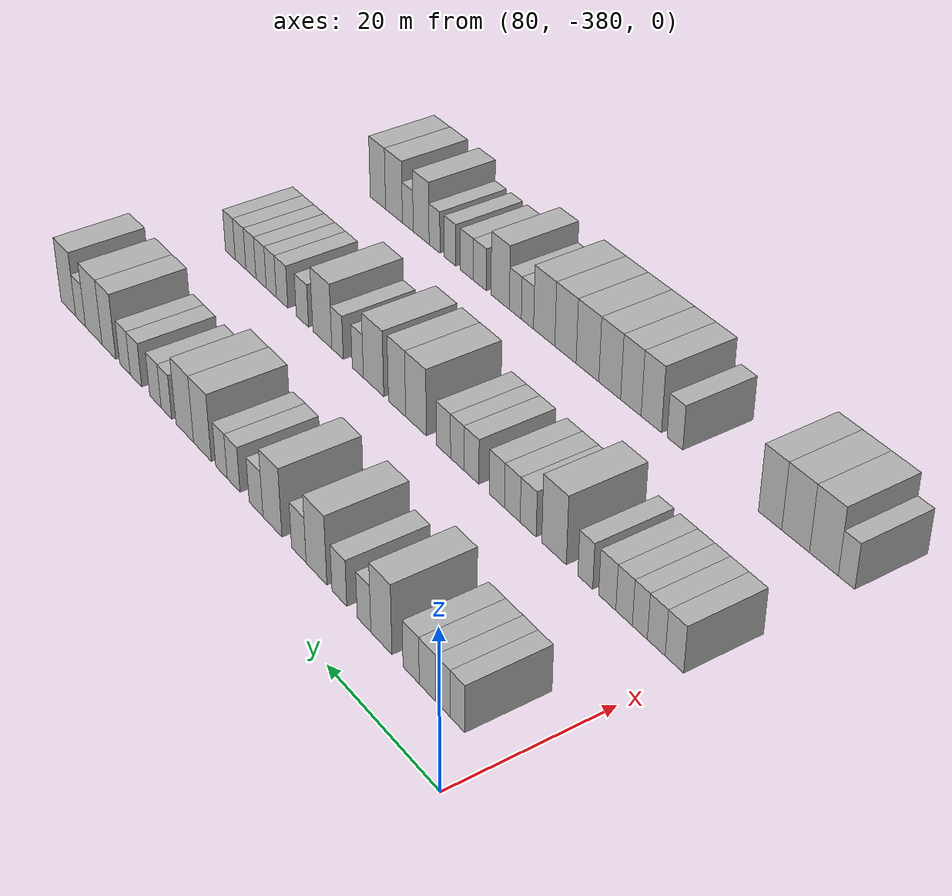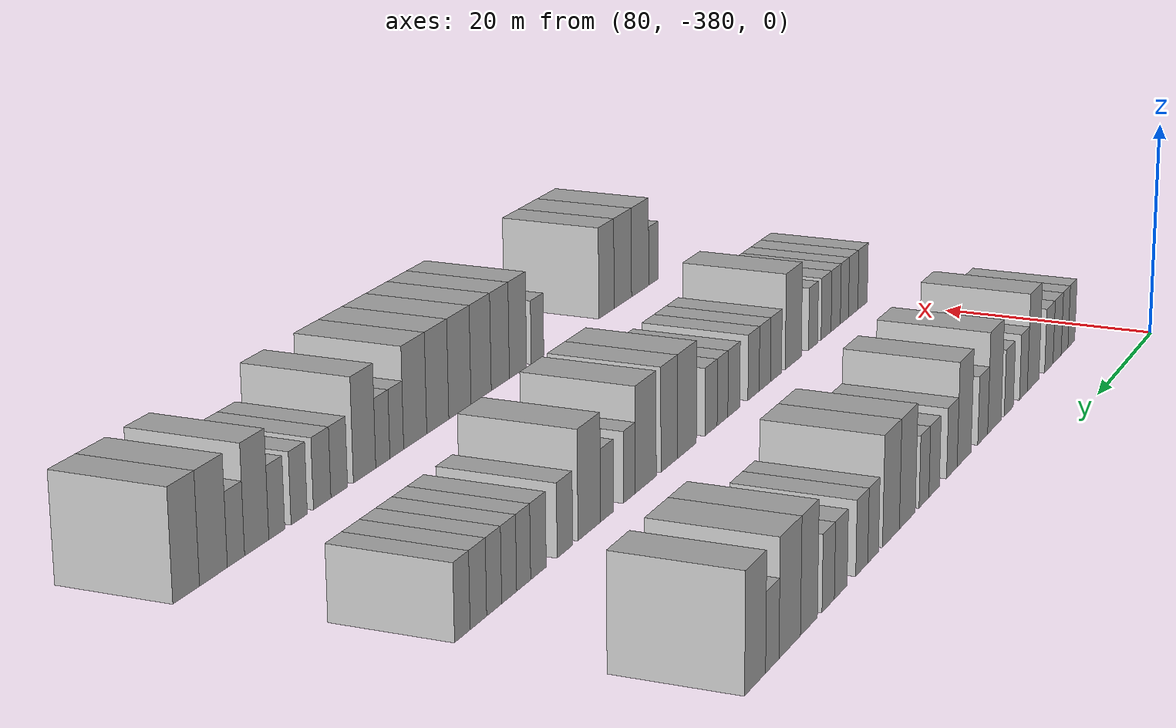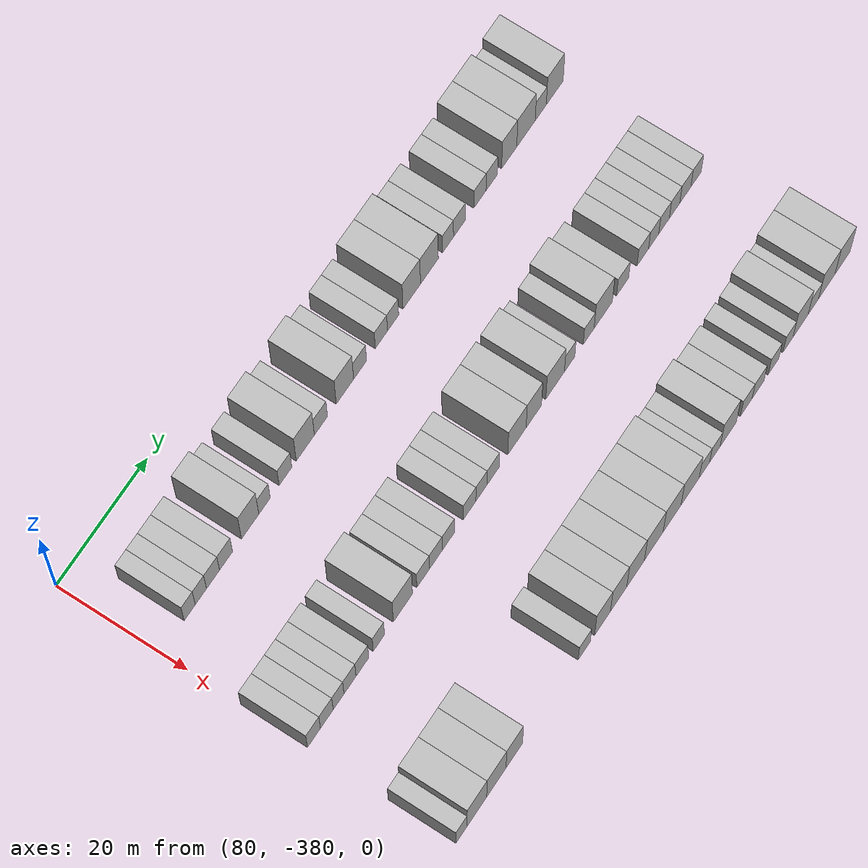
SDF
<sdf version="1.6">
 <world name="default">
  <model name="building_555">
   <static>1</static>
   <pose>91.0000 -373.7468 0 0.000000 0.000000 0.000000</pose>
   <link name="link">
    <pose>0 0 3.00 0 0 0</pose>
    <collision name="collision"><geometry><box><size>10.0000 2.4675 6.0000</size></box></geometry></collision>
    <visual name="visual">
     <cast_shadows>0</cast_shadows>
     <geometry><box><size>10.0000 2.4675 6.0000</size></box></geometry>
     <material>
      <script>
       <uri>model://HANNAS_wall/materials/scripts</uri>
       <uri>model://HANNAS_wall/materials/textures</uri>
       <name>vrc/HANNAS_wall</name>
      </script>
     </material>
    </visual>
   </link>
  </model>
  <model name="building_556">
   <static>1</static>
   <pose>91.0000 -371.2702 0 0.000000 0.000000 0.000000</pose>
   <link name="link">
    <pose>0 0 3.00 0 0 0</pose>
    <collision name="collision"><geometry><box><size>10.0000 2.4859 6.0000</size></box></geometry></collision>
    <visual name="visual">
     <cast_shadows>0</cast_shadows>
     <geometry><box><size>10.0000 2.4859 6.0000</size></box></geometry>
     <material>
      <script>
       <uri>model://HANNAS_wall/materials/scripts</uri>
       <uri>model://HANNAS_wall/materials/textures</uri>
       <name>vrc/HANNAS_wall</name>
      </script>
     </material>
    </visual>
   </link>
  </model>
  <model name="building_557">
   <static>1</static>
   <pose>91.0000 -368.5796 0 0.000000 0.000000 0.000000</pose>
   <link name="link">
    <pose>0 0 3.00 0 0 0</pose>
    <collision name="collision"><geometry><box><size>10.0000 2.8952 6.0000</size></box></geometry></collision>
    <visual name="visual">
     <cast_shadows>0</cast_shadows>
     <geometry><box><size>10.0000 2.8952 6.0000</size></box></geometry>
     <material>
      <script>
       <uri>model://HANNAS_wall/materials/scripts</uri>
       <uri>model://HANNAS_wall/materials/textures</uri>
       <name>vrc/HANNAS_wall</name>
      </script>
     </material>
    </visual>
   </link>
  </model>
  <model name="building_558">
   <static>1</static>
   <pose>91.0000 -365.6841 0 0.000000 0.000000 0.000000</pose>
   <link name="link">
    <pose>0 0 3.00 0 0 0</pose>
    <collision name="collision"><geometry><box><size>10.0000 2.8960 6.0000</size></box></geometry></collision>
    <visual name="visual">
     <cast_shadows>0</cast_shadows>
     <geometry><box><size>10.0000 2.8960 6.0000</size></box></geometry>
     <material>
      <script>
       <uri>model://HANNAS_wall/materials/scripts</uri>
       <uri>model://HANNAS_wall/materials/textures</uri>
       <name>vrc/HANNAS_wall</name>
      </script>
     </material>
    </visual>
   </link>
  </model>
  <model name="building_559">
   <static>1</static>
   <pose>91.0000 -360.2911 0 0.000000 0.000000 0.000000</pose>
   <link name="link">
    <pose>0 0 4.50 0 0 0</pose>
    <collision name="collision"><geometry><box><size>10.0000 3.8900 9.0000</size></box></geometry></collision>
    <visual name="visual">
     <cast_shadows>0</cast_shadows>
     <geometry><box><size>10.0000 3.8900 9.0000</size></box></geometry>
     <material>
      <script>
       <uri>model://HANNAS_wall/materials/scripts</uri>
       <uri>model://HANNAS_wall/materials/textures</uri>
       <name>vrc/HANNAS_wall</name>
      </script>
     </material>
    </visual>
   </link>
  </model>
  <model name="building_560">
   <static>1</static>
   <pose>91.0000 -357.0612 0 0.000000 0.000000 0.000000</pose>
   <link name="link">
    <pose>0 0 3.00 0 0 0</pose>
    <collision name="collision"><geometry><box><size>10.0000 2.5698 6.0000</size></box></geometry></collision>
    <visual name="visual">
     <cast_shadows>0</cast_shadows>
     <geometry><box><size>10.0000 2.5698 6.0000</size></box></geometry>
     <material>
      <script>
       <uri>model://HANNAS_wall/materials/scripts</uri>
       <uri>model://HANNAS_wall/materials/textures</uri>
       <name>vrc/HANNAS_wall</name>
      </script>
     </material>
    </visual>
   </link>
  </model>
  <model name="building_561">
   <static>1</static>
   <pose>91.0000 -352.3378 0 0.000000 0.000000 0.000000</pose>
   <link name="link">
    <pose>0 0 3.00 0 0 0</pose>
    <collision name="collision"><geometry><box><size>10.0000 2.8769 6.0000</size></box></geometry></collision>
    <visual name="visual">
     <cast_shadows>0</cast_shadows>
     <geometry><box><size>10.0000 2.8769 6.0000</size></box></geometry>
     <material>
      <script>
       <uri>model://HANNAS_wall/materials/scripts</uri>
       <uri>model://HANNAS_wall/materials/textures</uri>
       <name>vrc/HANNAS_wall</name>
      </script>
     </material>
    </visual>
   </link>
  </model>
  <model name="building_562">
   <static>1</static>
   <pose>91.0000 -347.8340 0 0.000000 0.000000 0.000000</pose>
   <link name="link">
    <pose>0 0 4.50 0 0 0</pose>
    <collision name="collision"><geometry><box><size>10.0000 4.1307 9.0000</size></box></geometry></collision>
    <visual name="visual">
     <cast_shadows>0</cast_shadows>
     <geometry><box><size>10.0000 4.1307 9.0000</size></box></geometry>
     <material>
      <script>
       <uri>model://HANNAS_wall/materials/scripts</uri>
       <uri>model://HANNAS_wall/materials/textures</uri>
       <name>vrc/HANNAS_wall</name>
      </script>
     </material>
    </visual>
   </link>
  </model>
  <model name="building_563">
   <static>1</static>
   <pose>91.0000 -344.2772 0 0.000000 0.000000 0.000000</pose>
   <link name="link">
    <pose>0 0 3.00 0 0 0</pose>
    <collision name="collision"><geometry><box><size>10.0000 2.9828 6.0000</size></box></geometry></collision>
    <visual name="visual">
     <cast_shadows>0</cast_shadows>
     <geometry><box><size>10.0000 2.9828 6.0000</size></box></geometry>
     <material>
      <script>
       <uri>model://HANNAS_wall/materials/scripts</uri>
       <uri>model://HANNAS_wall/materials/textures</uri>
       <name>vrc/HANNAS_wall</name>
      </script>
     </material>
    </visual>
   </link>
  </model>
  <model name="building_564">
   <static>1</static>
   <pose>91.0000 -338.7877 0 0.000000 0.000000 0.000000</pose>
   <link name="link">
    <pose>0 0 4.50 0 0 0</pose>
    <collision name="collision"><geometry><box><size>10.0000 3.9963 9.0000</size></box></geometry></collision>
    <visual name="visual">
     <cast_shadows>0</cast_shadows>
     <geometry><box><size>10.0000 3.9963 9.0000</size></box></geometry>
     <material>
      <script>
       <uri>model://HANNAS_wall/materials/scripts</uri>
       <uri>model://HANNAS_wall/materials/textures</uri>
       <name>vrc/HANNAS_wall</name>
      </script>
     </material>
    </visual>
   </link>
  </model>
  <model name="building_565">
   <static>1</static>
   <pose>91.0000 -335.2972 0 0.000000 0.000000 0.000000</pose>
   <link name="link">
    <pose>0 0 3.00 0 0 0</pose>
    <collision name="collision"><geometry><box><size>10.0000 2.9849 6.0000</size></box></geometry></collision>
    <visual name="visual">
     <cast_shadows>0</cast_shadows>
     <geometry><box><size>10.0000 2.9849 6.0000</size></box></geometry>
     <material>
      <script>
       <uri>model://HANNAS_wall/materials/scripts</uri>
       <uri>model://HANNAS_wall/materials/textures</uri>
       <name>vrc/HANNAS_wall</name>
      </script>
     </material>
    </visual>
   </link>
  </model>
  <model name="building_566">
   <static>1</static>
   <pose>91.0000 -330.3854 0 0.000000 0.000000 0.000000</pose>
   <link name="link">
    <pose>0 0 3.00 0 0 0</pose>
    <collision name="collision"><geometry><box><size>10.0000 2.8386 6.0000</size></box></geometry></collision>
    <visual name="visual">
     <cast_shadows>0</cast_shadows>
     <geometry><box><size>10.0000 2.8386 6.0000</size></box></geometry>
     <material>
      <script>
       <uri>model://HANNAS_wall/materials/scripts</uri>
       <uri>model://HANNAS_wall/materials/textures</uri>
       <name>vrc/HANNAS_wall</name>
      </script>
     </material>
    </visual>
   </link>
  </model>
  <model name="building_567">
   <static>1</static>
   <pose>91.0000 -327.6659 0 0.000000 0.000000 0.000000</pose>
   <link name="link">
    <pose>0 0 3.00 0 0 0</pose>
    <collision name="collision"><geometry><box><size>10.0000 2.6005 6.0000</size></box></geometry></collision>
    <visual name="visual">
     <cast_shadows>0</cast_shadows>
     <geometry><box><size>10.0000 2.6005 6.0000</size></box></geometry>
     <material>
      <script>
       <uri>model://HANNAS_wall/materials/scripts</uri>
       <uri>model://HANNAS_wall/materials/textures</uri>
       <name>vrc/HANNAS_wall</name>
      </script>
     </material>
    </visual>
   </link>
  </model>
  <model name="building_568">
   <static>1</static>
   <pose>91.0000 -323.3179 0 0.000000 0.000000 0.000000</pose>
   <link name="link">
    <pose>0 0 4.50 0 0 0</pose>
    <collision name="collision"><geometry><box><size>10.0000 4.0955 9.0000</size></box></geometry></collision>
    <visual name="visual">
     <cast_shadows>0</cast_shadows>
     <geometry><box><size>10.0000 4.0955 9.0000</size></box></geometry>
     <material>
      <script>
       <uri>model://HANNAS_wall/materials/scripts</uri>
       <uri>model://HANNAS_wall/materials/textures</uri>
       <name>vrc/HANNAS_wall</name>
      </script>
     </material>
    </visual>
   </link>
  </model>
  <model name="building_569">
   <static>1</static>
   <pose>91.0000 -319.1770 0 0.000000 0.000000 0.000000</pose>
   <link name="link">
    <pose>0 0 4.50 0 0 0</pose>
    <collision name="collision"><geometry><box><size>10.0000 4.1863 9.0000</size></box></geometry></collision>
    <visual name="visual">
     <cast_shadows>0</cast_shadows>
     <geometry><box><size>10.0000 4.1863 9.0000</size></box></geometry>
     <material>
      <script>
       <uri>model://HANNAS_wall/materials/scripts</uri>
       <uri>model://HANNAS_wall/materials/textures</uri>
       <name>vrc/HANNAS_wall</name>
      </script>
     </material>
    </visual>
   </link>
  </model>
  <model name="building_570">
   <static>1</static>
   <pose>91.0000 -314.7963 0 0.000000 0.000000 0.000000</pose>
   <link name="link">
    <pose>0 0 3.00 0 0 0</pose>
    <collision name="collision"><geometry><box><size>10.0000 2.5751 6.0000</size></box></geometry></collision>
    <visual name="visual">
     <cast_shadows>0</cast_shadows>
     <geometry><box><size>10.0000 2.5751 6.0000</size></box></geometry>
     <material>
      <script>
       <uri>model://HANNAS_wall/materials/scripts</uri>
       <uri>model://HANNAS_wall/materials/textures</uri>
       <name>vrc/HANNAS_wall</name>
      </script>
     </material>
    </visual>
   </link>
  </model>
  <model name="building_571">
   <static>1</static>
   <pose>91.0000 -312.0981 0 0.000000 0.000000 0.000000</pose>
   <link name="link">
    <pose>0 0 3.00 0 0 0</pose>
    <collision name="collision"><geometry><box><size>10.0000 2.8213 6.0000</size></box></geometry></collision>
    <visual name="visual">
     <cast_shadows>0</cast_shadows>
     <geometry><box><size>10.0000 2.8213 6.0000</size></box></geometry>
     <material>
      <script>
       <uri>model://HANNAS_wall/materials/scripts</uri>
       <uri>model://HANNAS_wall/materials/textures</uri>
       <name>vrc/HANNAS_wall</name>
      </script>
     </material>
    </visual>
   </link>
  </model>
  <model name="building_572">
   <static>1</static>
   <pose>91.0000 -307.2477 0 0.000000 0.000000 0.000000</pose>
   <link name="link">
    <pose>0 0 3.00 0 0 0</pose>
    <collision name="collision"><geometry><box><size>10.0000 2.8794 6.0000</size></box></geometry></collision>
    <visual name="visual">
     <cast_shadows>0</cast_shadows>
     <geometry><box><size>10.0000 2.8794 6.0000</size></box></geometry>
     <material>
      <script>
       <uri>model://HANNAS_wall/materials/scripts</uri>
       <uri>model://HANNAS_wall/materials/textures</uri>
       <name>vrc/HANNAS_wall</name>
      </script>
     </material>
    </visual>
   </link>
  </model>
  <model name="building_573">
   <static>1</static>
   <pose>91.0000 -304.4415 0 0.000000 0.000000 0.000000</pose>
   <link name="link">
    <pose>0 0 3.00 0 0 0</pose>
    <collision name="collision"><geometry><box><size>10.0000 2.7329 6.0000</size></box></geometry></collision>
    <visual name="visual">
     <cast_shadows>0</cast_shadows>
     <geometry><box><size>10.0000 2.7329 6.0000</size></box></geometry>
     <material>
      <script>
       <uri>model://HANNAS_wall/materials/scripts</uri>
       <uri>model://HANNAS_wall/materials/textures</uri>
       <name>vrc/HANNAS_wall</name>
      </script>
     </material>
    </visual>
   </link>
  </model>
  <model name="building_574">
   <static>1</static>
   <pose>91.0000 -300.2672 0 0.000000 0.000000 0.000000</pose>
   <link name="link">
    <pose>0 0 4.50 0 0 0</pose>
    <collision name="collision"><geometry><box><size>10.0000 3.6159 9.0000</size></box></geometry></collision>
    <visual name="visual">
     <cast_shadows>0</cast_shadows>
     <geometry><box><size>10.0000 3.6159 9.0000</size></box></geometry>
     <material>
      <script>
       <uri>model://HANNAS_wall/materials/scripts</uri>
       <uri>model://HANNAS_wall/materials/textures</uri>
       <name>vrc/HANNAS_wall</name>
      </script>
     </material>
    </visual>
   </link>
  </model>
  <model name="building_575">
   <static>1</static>
   <pose>91.0000 -296.2423 0 0.000000 0.000000 0.000000</pose>
   <link name="link">
    <pose>0 0 4.50 0 0 0</pose>
    <collision name="collision"><geometry><box><size>10.0000 4.4338 9.0000</size></box></geometry></collision>
    <visual name="visual">
     <cast_shadows>0</cast_shadows>
     <geometry><box><size>10.0000 4.4338 9.0000</size></box></geometry>
     <material>
      <script>
       <uri>model://HANNAS_wall/materials/scripts</uri>
       <uri>model://HANNAS_wall/materials/textures</uri>
       <name>vrc/HANNAS_wall</name>
      </script>
     </material>
    </visual>
   </link>
  </model>
  <model name="building_576">
   <static>1</static>
   <pose>91.0000 -292.6912 0 0.000000 0.000000 0.000000</pose>
   <link name="link">
    <pose>0 0 3.00 0 0 0</pose>
    <collision name="collision"><geometry><box><size>10.0000 2.6684 6.0000</size></box></geometry></collision>
    <visual name="visual">
     <cast_shadows>0</cast_shadows>
     <geometry><box><size>10.0000 2.6684 6.0000</size></box></geometry>
     <material>
      <script>
       <uri>model://HANNAS_wall/materials/scripts</uri>
       <uri>model://HANNAS_wall/materials/textures</uri>
       <name>vrc/HANNAS_wall</name>
      </script>
     </material>
    </visual>
   </link>
  </model>
  <model name="building_577">
   <static>1</static>
   <pose>91.0000 -289.3203 0 0.000000 0.000000 0.000000</pose>
   <link name="link">
    <pose>0 0 4.50 0 0 0</pose>
    <collision name="collision"><geometry><box><size>10.0000 4.0735 9.0000</size></box></geometry></collision>
    <visual name="visual">
     <cast_shadows>0</cast_shadows>
     <geometry><box><size>10.0000 4.0735 9.0000</size></box></geometry>
     <material>
      <script>
       <uri>model://HANNAS_wall/materials/scripts</uri>
       <uri>model://HANNAS_wall/materials/textures</uri>
       <name>vrc/HANNAS_wall</name>
      </script>
     </material>
    </visual>
   </link>
  </model>
  <model name="building_754">
   <static>1</static>
   <pose>113.0000 -378.5591 0 0.000000 0.000000 0.000000</pose>
   <link name="link">
    <pose>0 0 3.00 0 0 0</pose>
    <collision name="collision"><geometry><box><size>10.0000 2.8818 6.0000</size></box></geometry></collision>
    <visual name="visual">
     <cast_shadows>0</cast_shadows>
     <geometry><box><size>10.0000 2.8818 6.0000</size></box></geometry>
     <material>
      <script>
       <uri>model://HANNAS_wall/materials/scripts</uri>
       <uri>model://HANNAS_wall/materials/textures</uri>
       <name>vrc/HANNAS_wall</name>
      </script>
     </material>
    </visual>
   </link>
  </model>
  <model name="building_755">
   <static>1</static>
   <pose>113.0000 -375.7005 0 0.000000 0.000000 0.000000</pose>
   <link name="link">
    <pose>0 0 3.00 0 0 0</pose>
    <collision name="collision"><geometry><box><size>10.0000 2.8353 6.0000</size></box></geometry></collision>
    <visual name="visual">
     <cast_shadows>0</cast_shadows>
     <geometry><box><size>10.0000 2.8353 6.0000</size></box></geometry>
     <material>
      <script>
       <uri>model://HANNAS_wall/materials/scripts</uri>
       <uri>model://HANNAS_wall/materials/textures</uri>
       <name>vrc/HANNAS_wall</name>
      </script>
     </material>
    </visual>
   </link>
  </model>
  <model name="building_756">
   <static>1</static>
   <pose>113.0000 -373.0768 0 0.000000 0.000000 0.000000</pose>
   <link name="link">
    <pose>0 0 3.00 0 0 0</pose>
    <collision name="collision"><geometry><box><size>10.0000 2.4121 6.0000</size></box></geometry></collision>
    <visual name="visual">
     <cast_shadows>0</cast_shadows>
     <geometry><box><size>10.0000 2.4121 6.0000</size></box></geometry>
     <material>
      <script>
       <uri>model://HANNAS_wall/materials/scripts</uri>
       <uri>model://HANNAS_wall/materials/textures</uri>
       <name>vrc/HANNAS_wall</name>
      </script>
     </material>
    </visual>
   </link>
  </model>
  <model name="building_757">
   <static>1</static>
   <pose>113.0000 -370.5187 0 0.000000 0.000000 0.000000</pose>
   <link name="link">
    <pose>0 0 3.00 0 0 0</pose>
    <collision name="collision"><geometry><box><size>10.0000 2.7042 6.0000</size></box></geometry></collision>
    <visual name="visual">
     <cast_shadows>0</cast_shadows>
     <geometry><box><size>10.0000 2.7042 6.0000</size></box></geometry>
     <material>
      <script>
       <uri>model://HANNAS_wall/materials/scripts</uri>
       <uri>model://HANNAS_wall/materials/textures</uri>
       <name>vrc/HANNAS_wall</name>
      </script>
     </material>
    </visual>
   </link>
  </model>
  <model name="building_758">
   <static>1</static>
   <pose>113.0000 -367.7369 0 0.000000 0.000000 0.000000</pose>
   <link name="link">
    <pose>0 0 3.00 0 0 0</pose>
    <collision name="collision"><geometry><box><size>10.0000 2.8594 6.0000</size></box></geometry></collision>
    <visual name="visual">
     <cast_shadows>0</cast_shadows>
     <geometry><box><size>10.0000 2.8594 6.0000</size></box></geometry>
     <material>
      <script>
       <uri>model://HANNAS_wall/materials/scripts</uri>
       <uri>model://HANNAS_wall/materials/textures</uri>
       <name>vrc/HANNAS_wall</name>
      </script>
     </material>
    </visual>
   </link>
  </model>
  <model name="building_759">
   <static>1</static>
   <pose>113.0000 -364.0393 0 0.000000 0.000000 0.000000</pose>
   <link name="link">
    <pose>0 0 3.00 0 0 0</pose>
    <collision name="collision"><geometry><box><size>10.0000 2.5359 6.0000</size></box></geometry></collision>
    <visual name="visual">
     <cast_shadows>0</cast_shadows>
     <geometry><box><size>10.0000 2.5359 6.0000</size></box></geometry>
     <material>
      <script>
       <uri>model://HANNAS_wall/materials/scripts</uri>
       <uri>model://HANNAS_wall/materials/textures</uri>
       <name>vrc/HANNAS_wall</name>
      </script>
     </material>
    </visual>
   </link>
  </model>
  <model name="building_760">
   <static>1</static>
   <pose>113.0000 -358.6013 0 0.000000 0.000000 0.000000</pose>
   <link name="link">
    <pose>0 0 4.50 0 0 0</pose>
    <collision name="collision"><geometry><box><size>10.0000 4.3400 9.0000</size></box></geometry></collision>
    <visual name="visual">
     <cast_shadows>0</cast_shadows>
     <geometry><box><size>10.0000 4.3400 9.0000</size></box></geometry>
     <material>
      <script>
       <uri>model://HANNAS_wall/materials/scripts</uri>
       <uri>model://HANNAS_wall/materials/textures</uri>
       <name>vrc/HANNAS_wall</name>
      </script>
     </material>
    </visual>
   </link>
  </model>
  <model name="building_761">
   <static>1</static>
   <pose>113.0000 -353.9856 0 0.000000 0.000000 0.000000</pose>
   <link name="link">
    <pose>0 0 3.00 0 0 0</pose>
    <collision name="collision"><geometry><box><size>10.0000 2.8913 6.0000</size></box></geometry></collision>
    <visual name="visual">
     <cast_shadows>0</cast_shadows>
     <geometry><box><size>10.0000 2.8913 6.0000</size></box></geometry>
     <material>
      <script>
       <uri>model://HANNAS_wall/materials/scripts</uri>
       <uri>model://HANNAS_wall/materials/textures</uri>
       <name>vrc/HANNAS_wall</name>
      </script>
     </material>
    </visual>
   </link>
  </model>
  <model name="building_762">
   <static>1</static>
   <pose>113.0000 -351.0935 0 0.000000 0.000000 0.000000</pose>
   <link name="link">
    <pose>0 0 3.00 0 0 0</pose>
    <collision name="collision"><geometry><box><size>10.0000 2.8929 6.0000</size></box></geometry></collision>
    <visual name="visual">
     <cast_shadows>0</cast_shadows>
     <geometry><box><size>10.0000 2.8929 6.0000</size></box></geometry>
     <material>
      <script>
       <uri>model://HANNAS_wall/materials/scripts</uri>
       <uri>model://HANNAS_wall/materials/textures</uri>
       <name>vrc/HANNAS_wall</name>
      </script>
     </material>
    </visual>
   </link>
  </model>
  <model name="building_763">
   <static>1</static>
   <pose>113.0000 -348.2249 0 0.000000 0.000000 0.000000</pose>
   <link name="link">
    <pose>0 0 3.00 0 0 0</pose>
    <collision name="collision"><geometry><box><size>10.0000 2.8443 6.0000</size></box></geometry></collision>
    <visual name="visual">
     <cast_shadows>0</cast_shadows>
     <geometry><box><size>10.0000 2.8443 6.0000</size></box></geometry>
     <material>
      <script>
       <uri>model://HANNAS_wall/materials/scripts</uri>
       <uri>model://HANNAS_wall/materials/textures</uri>
       <name>vrc/HANNAS_wall</name>
      </script>
     </material>
    </visual>
   </link>
  </model>
  <model name="building_764">
   <static>1</static>
   <pose>113.0000 -343.3416 0 0.000000 0.000000 0.000000</pose>
   <link name="link">
    <pose>0 0 3.00 0 0 0</pose>
    <collision name="collision"><geometry><box><size>10.0000 2.9224 6.0000</size></box></geometry></collision>
    <visual name="visual">
     <cast_shadows>0</cast_shadows>
     <geometry><box><size>10.0000 2.9224 6.0000</size></box></geometry>
     <material>
      <script>
       <uri>model://HANNAS_wall/materials/scripts</uri>
       <uri>model://HANNAS_wall/materials/textures</uri>
       <name>vrc/HANNAS_wall</name>
      </script>
     </material>
    </visual>
   </link>
  </model>
  <model name="building_765">
   <static>1</static>
   <pose>113.0000 -340.5971 0 0.000000 0.000000 0.000000</pose>
   <link name="link">
    <pose>0 0 3.00 0 0 0</pose>
    <collision name="collision"><geometry><box><size>10.0000 2.5666 6.0000</size></box></geometry></collision>
    <visual name="visual">
     <cast_shadows>0</cast_shadows>
     <geometry><box><size>10.0000 2.5666 6.0000</size></box></geometry>
     <material>
      <script>
       <uri>model://HANNAS_wall/materials/scripts</uri>
       <uri>model://HANNAS_wall/materials/textures</uri>
       <name>vrc/HANNAS_wall</name>
      </script>
     </material>
    </visual>
   </link>
  </model>
  <model name="building_766">
   <static>1</static>
   <pose>113.0000 -337.8882 0 0.000000 0.000000 0.000000</pose>
   <link name="link">
    <pose>0 0 3.00 0 0 0</pose>
    <collision name="collision"><geometry><box><size>10.0000 2.8511 6.0000</size></box></geometry></collision>
    <visual name="visual">
     <cast_shadows>0</cast_shadows>
     <geometry><box><size>10.0000 2.8511 6.0000</size></box></geometry>
     <material>
      <script>
       <uri>model://HANNAS_wall/materials/scripts</uri>
       <uri>model://HANNAS_wall/materials/textures</uri>
       <name>vrc/HANNAS_wall</name>
      </script>
     </material>
    </visual>
   </link>
  </model>
  <model name="building_767">
   <static>1</static>
   <pose>113.0000 -332.3294 0 0.000000 0.000000 0.000000</pose>
   <link name="link">
    <pose>0 0 4.50 0 0 0</pose>
    <collision name="collision"><geometry><box><size>10.0000 4.2665 9.0000</size></box></geometry></collision>
    <visual name="visual">
     <cast_shadows>0</cast_shadows>
     <geometry><box><size>10.0000 4.2665 9.0000</size></box></geometry>
     <material>
      <script>
       <uri>model://HANNAS_wall/materials/scripts</uri>
       <uri>model://HANNAS_wall/materials/textures</uri>
       <name>vrc/HANNAS_wall</name>
      </script>
     </material>
    </visual>
   </link>
  </model>
  <model name="building_768">
   <static>1</static>
   <pose>113.0000 -328.3878 0 0.000000 0.000000 0.000000</pose>
   <link name="link">
    <pose>0 0 4.50 0 0 0</pose>
    <collision name="collision"><geometry><box><size>10.0000 3.6167 9.0000</size></box></geometry></collision>
    <visual name="visual">
     <cast_shadows>0</cast_shadows>
     <geometry><box><size>10.0000 3.6167 9.0000</size></box></geometry>
     <material>
      <script>
       <uri>model://HANNAS_wall/materials/scripts</uri>
       <uri>model://HANNAS_wall/materials/textures</uri>
       <name>vrc/HANNAS_wall</name>
      </script>
     </material>
    </visual>
   </link>
  </model>
  <model name="building_769">
   <static>1</static>
   <pose>113.0000 -323.3773 0 0.000000 0.000000 0.000000</pose>
   <link name="link">
    <pose>0 0 4.50 0 0 0</pose>
    <collision name="collision"><geometry><box><size>10.0000 4.4043 9.0000</size></box></geometry></collision>
    <visual name="visual">
     <cast_shadows>0</cast_shadows>
     <geometry><box><size>10.0000 4.4043 9.0000</size></box></geometry>
     <material>
      <script>
       <uri>model://HANNAS_wall/materials/scripts</uri>
       <uri>model://HANNAS_wall/materials/textures</uri>
       <name>vrc/HANNAS_wall</name>
      </script>
     </material>
    </visual>
   </link>
  </model>
  <model name="building_770">
   <static>1</static>
   <pose>113.0000 -319.9478 0 0.000000 0.000000 0.000000</pose>
   <link name="link">
    <pose>0 0 3.00 0 0 0</pose>
    <collision name="collision"><geometry><box><size>10.0000 2.4547 6.0000</size></box></geometry></collision>
    <visual name="visual">
     <cast_shadows>0</cast_shadows>
     <geometry><box><size>10.0000 2.4547 6.0000</size></box></geometry>
     <material>
      <script>
       <uri>model://HANNAS_wall/materials/scripts</uri>
       <uri>model://HANNAS_wall/materials/textures</uri>
       <name>vrc/HANNAS_wall</name>
      </script>
     </material>
    </visual>
   </link>
  </model>
  <model name="building_771">
   <static>1</static>
   <pose>113.0000 -315.4310 0 0.000000 0.000000 0.000000</pose>
   <link name="link">
    <pose>0 0 3.00 0 0 0</pose>
    <collision name="collision"><geometry><box><size>10.0000 2.5788 6.0000</size></box></geometry></collision>
    <visual name="visual">
     <cast_shadows>0</cast_shadows>
     <geometry><box><size>10.0000 2.5788 6.0000</size></box></geometry>
     <material>
      <script>
       <uri>model://HANNAS_wall/materials/scripts</uri>
       <uri>model://HANNAS_wall/materials/textures</uri>
       <name>vrc/HANNAS_wall</name>
      </script>
     </material>
    </visual>
   </link>
  </model>
  <model name="building_772">
   <static>1</static>
   <pose>113.0000 -311.9548 0 0.000000 0.000000 0.000000</pose>
   <link name="link">
    <pose>0 0 4.50 0 0 0</pose>
    <collision name="collision"><geometry><box><size>10.0000 4.3737 9.0000</size></box></geometry></collision>
    <visual name="visual">
     <cast_shadows>0</cast_shadows>
     <geometry><box><size>10.0000 4.3737 9.0000</size></box></geometry>
     <material>
      <script>
       <uri>model://HANNAS_wall/materials/scripts</uri>
       <uri>model://HANNAS_wall/materials/textures</uri>
       <name>vrc/HANNAS_wall</name>
      </script>
     </material>
    </visual>
   </link>
  </model>
  <model name="building_773">
   <static>1</static>
   <pose>113.0000 -307.3158 0 0.000000 0.000000 0.000000</pose>
   <link name="link">
    <pose>0 0 3.00 0 0 0</pose>
    <collision name="collision"><geometry><box><size>10.0000 2.9041 6.0000</size></box></geometry></collision>
    <visual name="visual">
     <cast_shadows>0</cast_shadows>
     <geometry><box><size>10.0000 2.9041 6.0000</size></box></geometry>
     <material>
      <script>
       <uri>model://HANNAS_wall/materials/scripts</uri>
       <uri>model://HANNAS_wall/materials/textures</uri>
       <name>vrc/HANNAS_wall</name>
      </script>
     </material>
    </visual>
   </link>
  </model>
  <model name="building_774">
   <static>1</static>
   <pose>113.0000 -302.4705 0 0.000000 0.000000 0.000000</pose>
   <link name="link">
    <pose>0 0 3.00 0 0 0</pose>
    <collision name="collision"><geometry><box><size>10.0000 2.7864 6.0000</size></box></geometry></collision>
    <visual name="visual">
     <cast_shadows>0</cast_shadows>
     <geometry><box><size>10.0000 2.7864 6.0000</size></box></geometry>
     <material>
      <script>
       <uri>model://HANNAS_wall/materials/scripts</uri>
       <uri>model://HANNAS_wall/materials/textures</uri>
       <name>vrc/HANNAS_wall</name>
      </script>
     </material>
    </visual>
   </link>
  </model>
  <model name="building_775">
   <static>1</static>
   <pose>113.0000 -299.8451 0 0.000000 0.000000 0.000000</pose>
   <link name="link">
    <pose>0 0 3.00 0 0 0</pose>
    <collision name="collision"><geometry><box><size>10.0000 2.4645 6.0000</size></box></geometry></collision>
    <visual name="visual">
     <cast_shadows>0</cast_shadows>
     <geometry><box><size>10.0000 2.4645 6.0000</size></box></geometry>
     <material>
      <script>
       <uri>model://HANNAS_wall/materials/scripts</uri>
       <uri>model://HANNAS_wall/materials/textures</uri>
       <name>vrc/HANNAS_wall</name>
      </script>
     </material>
    </visual>
   </link>
  </model>
  <model name="building_776">
   <static>1</static>
   <pose>113.0000 -297.3281 0 0.000000 0.000000 0.000000</pose>
   <link name="link">
    <pose>0 0 3.00 0 0 0</pose>
    <collision name="collision"><geometry><box><size>10.0000 2.5695 6.0000</size></box></geometry></collision>
    <visual name="visual">
     <cast_shadows>0</cast_shadows>
     <geometry><box><size>10.0000 2.5695 6.0000</size></box></geometry>
     <material>
      <script>
       <uri>model://HANNAS_wall/materials/scripts</uri>
       <uri>model://HANNAS_wall/materials/textures</uri>
       <name>vrc/HANNAS_wall</name>
      </script>
     </material>
    </visual>
   </link>
  </model>
  <model name="building_777">
   <static>1</static>
   <pose>113.0000 -294.7752 0 0.000000 0.000000 0.000000</pose>
   <link name="link">
    <pose>0 0 3.00 0 0 0</pose>
    <collision name="collision"><geometry><box><size>10.0000 2.5362 6.0000</size></box></geometry></collision>
    <visual name="visual">
     <cast_shadows>0</cast_shadows>
     <geometry><box><size>10.0000 2.5362 6.0000</size></box></geometry>
     <material>
      <script>
       <uri>model://HANNAS_wall/materials/scripts</uri>
       <uri>model://HANNAS_wall/materials/textures</uri>
       <name>vrc/HANNAS_wall</name>
      </script>
     </material>
    </visual>
   </link>
  </model>
  <model name="building_778">
   <static>1</static>
   <pose>113.0000 -292.1487 0 0.000000 0.000000 0.000000</pose>
   <link name="link">
    <pose>0 0 3.00 0 0 0</pose>
    <collision name="collision"><geometry><box><size>10.0000 2.7169 6.0000</size></box></geometry></collision>
    <visual name="visual">
     <cast_shadows>0</cast_shadows>
     <geometry><box><size>10.0000 2.7169 6.0000</size></box></geometry>
     <material>
      <script>
       <uri>model://HANNAS_wall/materials/scripts</uri>
       <uri>model://HANNAS_wall/materials/textures</uri>
       <name>vrc/HANNAS_wall</name>
      </script>
     </material>
    </visual>
   </link>
  </model>
  <model name="building_779">
   <static>1</static>
   <pose>113.0000 -289.5327 0 0.000000 0.000000 0.000000</pose>
   <link name="link">
    <pose>0 0 3.00 0 0 0</pose>
    <collision name="collision"><geometry><box><size>10.0000 2.5151 6.0000</size></box></geometry></collision>
    <visual name="visual">
     <cast_shadows>0</cast_shadows>
     <geometry><box><size>10.0000 2.5151 6.0000</size></box></geometry>
     <material>
      <script>
       <uri>model://HANNAS_wall/materials/scripts</uri>
       <uri>model://HANNAS_wall/materials/textures</uri>
       <name>vrc/HANNAS_wall</name>
      </script>
     </material>
    </visual>
   </link>
  </model>
  <model name="building_945">
   <static>1</static>
   <pose>135.0000 -378.7548 0 0.000000 0.000000 0.000000</pose>
   <link name="link">
    <pose>0 0 3.00 0 0 0</pose>
    <collision name="collision"><geometry><box><size>10.0000 2.4903 6.0000</size></box></geometry></collision>
    <visual name="visual">
     <cast_shadows>0</cast_shadows>
     <geometry><box><size>10.0000 2.4903 6.0000</size></box></geometry>
     <material>
      <script>
       <uri>model://HANNAS_wall/materials/scripts</uri>
       <uri>model://HANNAS_wall/materials/textures</uri>
       <name>vrc/HANNAS_wall</name>
      </script>
     </material>
    </visual>
   </link>
  </model>
  <model name="building_946">
   <static>1</static>
   <pose>135.0000 -375.3075 0 0.000000 0.000000 0.000000</pose>
   <link name="link">
    <pose>0 0 4.50 0 0 0</pose>
    <collision name="collision"><geometry><box><size>10.0000 4.4045 9.0000</size></box></geometry></collision>
    <visual name="visual">
     <cast_shadows>0</cast_shadows>
     <geometry><box><size>10.0000 4.4045 9.0000</size></box></geometry>
     <material>
      <script>
       <uri>model://HANNAS_wall/materials/scripts</uri>
       <uri>model://HANNAS_wall/materials/textures</uri>
       <name>vrc/HANNAS_wall</name>
      </script>
     </material>
    </visual>
   </link>
  </model>
  <model name="building_947">
   <static>1</static>
   <pose>135.0000 -370.9192 0 0.000000 0.000000 0.000000</pose>
   <link name="link">
    <pose>0 0 4.50 0 0 0</pose>
    <collision name="collision"><geometry><box><size>10.0000 4.3721 9.0000</size></box></geometry></collision>
    <visual name="visual">
     <cast_shadows>0</cast_shadows>
     <geometry><box><size>10.0000 4.3721 9.0000</size></box></geometry>
     <material>
      <script>
       <uri>model://HANNAS_wall/materials/scripts</uri>
       <uri>model://HANNAS_wall/materials/textures</uri>
       <name>vrc/HANNAS_wall</name>
      </script>
     </material>
    </visual>
   </link>
  </model>
  <model name="building_948">
   <static>1</static>
   <pose>135.0000 -366.8601 0 0.000000 0.000000 0.000000</pose>
   <link name="link">
    <pose>0 0 4.50 0 0 0</pose>
    <collision name="collision"><geometry><box><size>10.0000 3.7460 9.0000</size></box></geometry></collision>
    <visual name="visual">
     <cast_shadows>0</cast_shadows>
     <geometry><box><size>10.0000 3.7460 9.0000</size></box></geometry>
     <material>
      <script>
       <uri>model://HANNAS_wall/materials/scripts</uri>
       <uri>model://HANNAS_wall/materials/textures</uri>
       <name>vrc/HANNAS_wall</name>
      </script>
     </material>
    </visual>
   </link>
  </model>
  <model name="building_949">
   <static>1</static>
   <pose>135.0000 -350.8107 0 0.000000 0.000000 0.000000</pose>
   <link name="link">
    <pose>0 0 3.00 0 0 0</pose>
    <collision name="collision"><geometry><box><size>10.0000 2.7843 6.0000</size></box></geometry></collision>
    <visual name="visual">
     <cast_shadows>0</cast_shadows>
     <geometry><box><size>10.0000 2.7843 6.0000</size></box></geometry>
     <material>
      <script>
       <uri>model://HANNAS_wall/materials/scripts</uri>
       <uri>model://HANNAS_wall/materials/textures</uri>
       <name>vrc/HANNAS_wall</name>
      </script>
     </material>
    </visual>
   </link>
  </model>
  <model name="building_950">
   <static>1</static>
   <pose>135.0000 -346.5713 0 0.000000 0.000000 0.000000</pose>
   <link name="link">
    <pose>0 0 4.50 0 0 0</pose>
    <collision name="collision"><geometry><box><size>10.0000 3.6944 9.0000</size></box></geometry></collision>
    <visual name="visual">
     <cast_shadows>0</cast_shadows>
     <geometry><box><size>10.0000 3.6944 9.0000</size></box></geometry>
     <material>
      <script>
       <uri>model://HANNAS_wall/materials/scripts</uri>
       <uri>model://HANNAS_wall/materials/textures</uri>
       <name>vrc/HANNAS_wall</name>
      </script>
     </material>
    </visual>
   </link>
  </model>
  <model name="building_951">
   <static>1</static>
   <pose>135.0000 -342.8245 0 0.000000 0.000000 0.000000</pose>
   <link name="link">
    <pose>0 0 4.50 0 0 0</pose>
    <collision name="collision"><geometry><box><size>10.0000 3.7993 9.0000</size></box></geometry></collision>
    <visual name="visual">
     <cast_shadows>0</cast_shadows>
     <geometry><box><size>10.0000 3.7993 9.0000</size></box></geometry>
     <material>
      <script>
       <uri>model://HANNAS_wall/materials/scripts</uri>
       <uri>model://HANNAS_wall/materials/textures</uri>
       <name>vrc/HANNAS_wall</name>
      </script>
     </material>
    </visual>
   </link>
  </model>
  <model name="building_952">
   <static>1</static>
   <pose>135.0000 -338.8628 0 0.000000 0.000000 0.000000</pose>
   <link name="link">
    <pose>0 0 4.50 0 0 0</pose>
    <collision name="collision"><geometry><box><size>10.0000 4.1239 9.0000</size></box></geometry></collision>
    <visual name="visual">
     <cast_shadows>0</cast_shadows>
     <geometry><box><size>10.0000 4.1239 9.0000</size></box></geometry>
     <material>
      <script>
       <uri>model://HANNAS_wall/materials/scripts</uri>
       <uri>model://HANNAS_wall/materials/textures</uri>
       <name>vrc/HANNAS_wall</name>
      </script>
     </material>
    </visual>
   </link>
  </model>
  <model name="building_953">
   <static>1</static>
   <pose>135.0000 -334.5989 0 0.000000 0.000000 0.000000</pose>
   <link name="link">
    <pose>0 0 4.50 0 0 0</pose>
    <collision name="collision"><geometry><box><size>10.0000 4.4040 9.0000</size></box></geometry></collision>
    <visual name="visual">
     <cast_shadows>0</cast_shadows>
     <geometry><box><size>10.0000 4.4040 9.0000</size></box></geometry>
     <material>
      <script>
       <uri>model://HANNAS_wall/materials/scripts</uri>
       <uri>model://HANNAS_wall/materials/textures</uri>
       <name>vrc/HANNAS_wall</name>
      </script>
     </material>
    </visual>
   </link>
  </model>
  <model name="building_954">
   <static>1</static>
   <pose>135.0000 -330.2824 0 0.000000 0.000000 0.000000</pose>
   <link name="link">
    <pose>0 0 4.50 0 0 0</pose>
    <collision name="collision"><geometry><box><size>10.0000 4.2290 9.0000</size></box></geometry></collision>
    <visual name="visual">
     <cast_shadows>0</cast_shadows>
     <geometry><box><size>10.0000 4.2290 9.0000</size></box></geometry>
     <material>
      <script>
       <uri>model://HANNAS_wall/materials/scripts</uri>
       <uri>model://HANNAS_wall/materials/textures</uri>
       <name>vrc/HANNAS_wall</name>
      </script>
     </material>
    </visual>
   </link>
  </model>
  <model name="building_955">
   <static>1</static>
   <pose>135.0000 -326.0141 0 0.000000 0.000000 0.000000</pose>
   <link name="link">
    <pose>0 0 4.50 0 0 0</pose>
    <collision name="collision"><geometry><box><size>10.0000 4.3075 9.0000</size></box></geometry></collision>
    <visual name="visual">
     <cast_shadows>0</cast_shadows>
     <geometry><box><size>10.0000 4.3075 9.0000</size></box></geometry>
     <material>
      <script>
       <uri>model://HANNAS_wall/materials/scripts</uri>
       <uri>model://HANNAS_wall/materials/textures</uri>
       <name>vrc/HANNAS_wall</name>
      </script>
     </material>
    </visual>
   </link>
  </model>
  <model name="building_956">
   <static>1</static>
   <pose>135.0000 -322.6077 0 0.000000 0.000000 0.000000</pose>
   <link name="link">
    <pose>0 0 3.00 0 0 0</pose>
    <collision name="collision"><geometry><box><size>10.0000 2.5052 6.0000</size></box></geometry></collision>
    <visual name="visual">
     <cast_shadows>0</cast_shadows>
     <geometry><box><size>10.0000 2.5052 6.0000</size></box></geometry>
     <material>
      <script>
       <uri>model://HANNAS_wall/materials/scripts</uri>
       <uri>model://HANNAS_wall/materials/textures</uri>
       <name>vrc/HANNAS_wall</name>
      </script>
     </material>
    </visual>
   </link>
  </model>
  <model name="building_957">
   <static>1</static>
   <pose>135.0000 -320.0922 0 0.000000 0.000000 0.000000</pose>
   <link name="link">
    <pose>0 0 3.00 0 0 0</pose>
    <collision name="collision"><geometry><box><size>10.0000 2.5259 6.0000</size></box></geometry></collision>
    <visual name="visual">
     <cast_shadows>0</cast_shadows>
     <geometry><box><size>10.0000 2.5259 6.0000</size></box></geometry>
     <material>
      <script>
       <uri>model://HANNAS_wall/materials/scripts</uri>
       <uri>model://HANNAS_wall/materials/textures</uri>
       <name>vrc/HANNAS_wall</name>
      </script>
     </material>
    </visual>
   </link>
  </model>
  <model name="building_958">
   <static>1</static>
   <pose>135.0000 -316.8801 0 0.000000 0.000000 0.000000</pose>
   <link name="link">
    <pose>0 0 4.50 0 0 0</pose>
    <collision name="collision"><geometry><box><size>10.0000 3.8983 9.0000</size></box></geometry></collision>
    <visual name="visual">
     <cast_shadows>0</cast_shadows>
     <geometry><box><size>10.0000 3.8983 9.0000</size></box></geometry>
     <material>
      <script>
       <uri>model://HANNAS_wall/materials/scripts</uri>
       <uri>model://HANNAS_wall/materials/textures</uri>
       <name>vrc/HANNAS_wall</name>
      </script>
     </material>
    </visual>
   </link>
  </model>
  <model name="building_959">
   <static>1</static>
   <pose>135.0000 -312.5281 0 0.000000 0.000000 0.000000</pose>
   <link name="link">
    <pose>0 0 3.00 0 0 0</pose>
    <collision name="collision"><geometry><box><size>10.0000 2.8057 6.0000</size></box></geometry></collision>
    <visual name="visual">
     <cast_shadows>0</cast_shadows>
     <geometry><box><size>10.0000 2.8057 6.0000</size></box></geometry>
     <material>
      <script>
       <uri>model://HANNAS_wall/materials/scripts</uri>
       <uri>model://HANNAS_wall/materials/textures</uri>
       <name>vrc/HANNAS_wall</name>
      </script>
     </material>
    </visual>
   </link>
  </model>
  <model name="building_960">
   <static>1</static>
   <pose>135.0000 -309.6814 0 0.000000 0.000000 0.000000</pose>
   <link name="link">
    <pose>0 0 3.00 0 0 0</pose>
    <collision name="collision"><geometry><box><size>10.0000 2.8877 6.0000</size></box></geometry></collision>
    <visual name="visual">
     <cast_shadows>0</cast_shadows>
     <geometry><box><size>10.0000 2.8877 6.0000</size></box></geometry>
     <material>
      <script>
       <uri>model://HANNAS_wall/materials/scripts</uri>
       <uri>model://HANNAS_wall/materials/textures</uri>
       <name>vrc/HANNAS_wall</name>
      </script>
     </material>
    </visual>
   </link>
  </model>
  <model name="building_961">
   <static>1</static>
   <pose>135.0000 -305.9384 0 0.000000 0.000000 0.000000</pose>
   <link name="link">
    <pose>0 0 3.00 0 0 0</pose>
    <collision name="collision"><geometry><box><size>10.0000 2.5983 6.0000</size></box></geometry></collision>
    <visual name="visual">
     <cast_shadows>0</cast_shadows>
     <geometry><box><size>10.0000 2.5983 6.0000</size></box></geometry>
     <material>
      <script>
       <uri>model://HANNAS_wall/materials/scripts</uri>
       <uri>model://HANNAS_wall/materials/textures</uri>
       <name>vrc/HANNAS_wall</name>
      </script>
     </material>
    </visual>
   </link>
  </model>
  <model name="building_962">
   <static>1</static>
   <pose>135.0000 -302.3967 0 0.000000 0.000000 0.000000</pose>
   <link name="link">
    <pose>0 0 3.00 0 0 0</pose>
    <collision name="collision"><geometry><box><size>10.0000 2.4852 6.0000</size></box></geometry></collision>
    <visual name="visual">
     <cast_shadows>0</cast_shadows>
     <geometry><box><size>10.0000 2.4852 6.0000</size></box></geometry>
     <material>
      <script>
       <uri>model://HANNAS_wall/materials/scripts</uri>
       <uri>model://HANNAS_wall/materials/textures</uri>
       <name>vrc/HANNAS_wall</name>
      </script>
     </material>
    </visual>
   </link>
  </model>
  <model name="building_963">
   <static>1</static>
   <pose>135.0000 -299.3101 0 0.000000 0.000000 0.000000</pose>
   <link name="link">
    <pose>0 0 4.50 0 0 0</pose>
    <collision name="collision"><geometry><box><size>10.0000 3.6878 9.0000</size></box></geometry></collision>
    <visual name="visual">
     <cast_shadows>0</cast_shadows>
     <geometry><box><size>10.0000 3.6878 9.0000</size></box></geometry>
     <material>
      <script>
       <uri>model://HANNAS_wall/materials/scripts</uri>
       <uri>model://HANNAS_wall/materials/textures</uri>
       <name>vrc/HANNAS_wall</name>
      </script>
     </material>
    </visual>
   </link>
  </model>
  <model name="building_964">
   <static>1</static>
   <pose>135.0000 -296.1890 0 0.000000 0.000000 0.000000</pose>
   <link name="link">
    <pose>0 0 3.00 0 0 0</pose>
    <collision name="collision"><geometry><box><size>10.0000 2.5545 6.0000</size></box></geometry></collision>
    <visual name="visual">
     <cast_shadows>0</cast_shadows>
     <geometry><box><size>10.0000 2.5545 6.0000</size></box></geometry>
     <material>
      <script>
       <uri>model://HANNAS_wall/materials/scripts</uri>
       <uri>model://HANNAS_wall/materials/textures</uri>
       <name>vrc/HANNAS_wall</name>
      </script>
     </material>
    </visual>
   </link>
  </model>
  <model name="building_965">
   <static>1</static>
   <pose>135.0000 -292.8938 0 0.000000 0.000000 0.000000</pose>
   <link name="link">
    <pose>0 0 4.50 0 0 0</pose>
    <collision name="collision"><geometry><box><size>10.0000 4.0361 9.0000</size></box></geometry></collision>
    <visual name="visual">
     <cast_shadows>0</cast_shadows>
     <geometry><box><size>10.0000 4.0361 9.0000</size></box></geometry>
     <material>
      <script>
       <uri>model://HANNAS_wall/materials/scripts</uri>
       <uri>model://HANNAS_wall/materials/textures</uri>
       <name>vrc/HANNAS_wall</name>
      </script>
     </material>
    </visual>
   </link>
  </model>
  <model name="building_966">
   <static>1</static>
   <pose>135.0000 -289.0007 0 0.000000 0.000000 0.000000</pose>
   <link name="link">
    <pose>0 0 4.50 0 0 0</pose>
    <collision name="collision"><geometry><box><size>10.0000 3.7501 9.0000</size></box></geometry></collision>
    <visual name="visual">
     <cast_shadows>0</cast_shadows>
     <geometry><box><size>10.0000 3.7501 9.0000</size></box></geometry>
     <material>
      <script>
       <uri>model://HANNAS_wall/materials/scripts</uri>
       <uri>model://HANNAS_wall/materials/textures</uri>
       <name>vrc/HANNAS_wall</name>
      </script>
     </material>
    </visual>
   </link>
  </model>
 </world>
</sdf>
